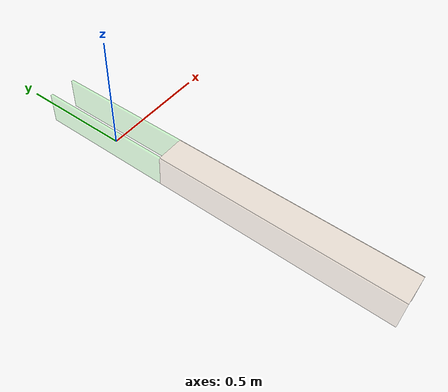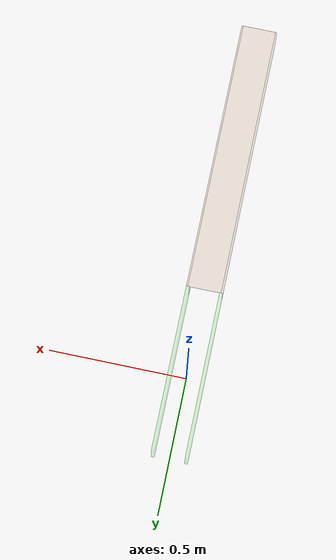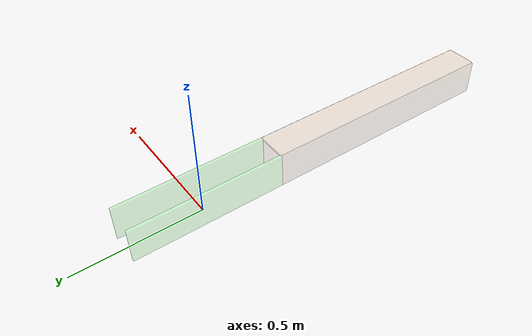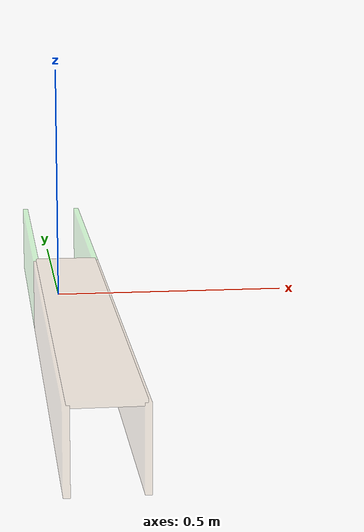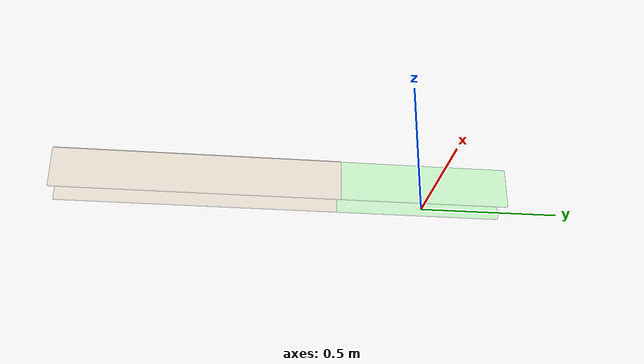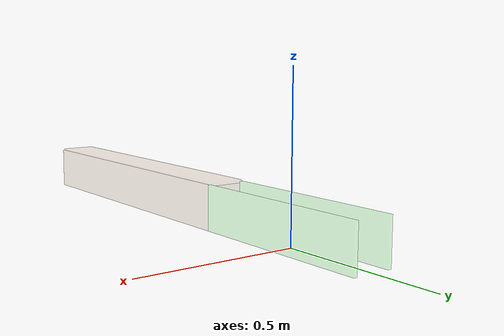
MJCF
<mujoco>
    <compiler angle="degree"/>

    <asset>
        <texture type="skybox" builtin="gradient" rgb1="1 1 1" rgb2=".6 .8 1" width="256" height="256"/>
        <texture name="texplane" type="2d" builtin="checker" rgb1=".2 .3 .4" rgb2=".1 0.15 0.2" width="512" height="512" mark="cross" markrgb=".8 .8 .8"/>

        <material name="matplane" reflectance="0" texture="texplane" texrepeat="2 2" texuniform="true"/>
        <material name="wall_mat" rgba="0.7 0.5 0.3 0.2"/>
        <material name="shadow_init" rgba="0.1 0.9 0.1 0.1"/>
        <material name="top_mat" rgba="0.7 0.5 0.3 0.2"/>
    </asset>

    <worldbody>
        <geom name="shadow0" type="box" pos="-0.06 0 0.07" size="0.0055 0.3 0.07" material="shadow_init"/>
        <geom name="shadow1" type="box" pos="0.06 0 0.07" size="0.0055 0.3 0.07" material="shadow_init"/>

        <geom name="wall1" type="box" pos="-0.06 -0.8 0.07" size="0.0055 0.5 0.07" material="wall_mat"/>
        <geom name="wall2" type="box" pos="0.06 -0.8 0.07" size="0.0055 0.5 0.07" material="wall_mat"/>
        <geom name="top" type="box" pos="0 -0.8 0.14" size="0.06 0.5 0.005" material="top_mat"/>

        <site name="squeezing" pos="0 -0.3 0.05" size="0.01" rgba="1 0 0 0"/>

    </worldbody>

    <option timestep="0.002" o_solimp="0.9 0.95 0.001 0.1 2" o_solref="0.008 2" cone="elliptic"
        impratio="3.0" noslip_iterations="5" noslip_tolerance="1e-8">
        <flag override="enable"/>
    </option>

</mujoco>
